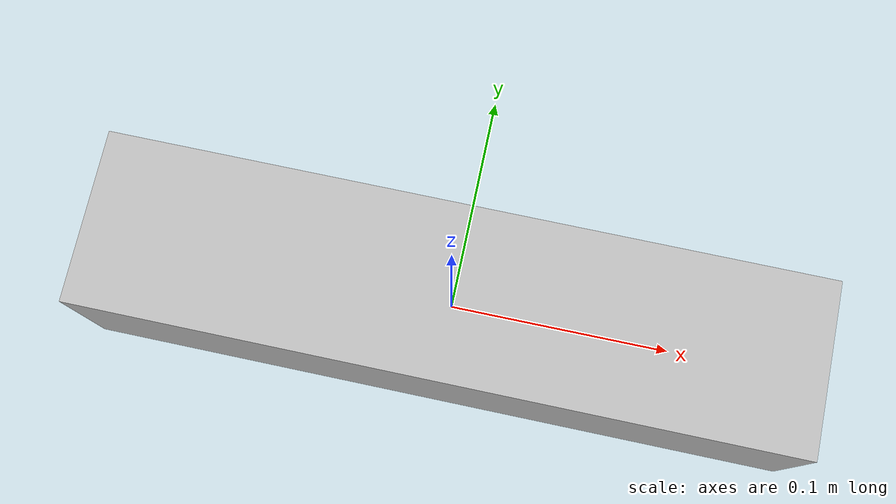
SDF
<?xml version='1.0'?>
<sdf version='1.6'>
  <model name='barricade'>
  <static>true</static>
    <link name='link'>
      <inertial>
        <mass>0.245303</mass>
        <inertia>
          <ixx>0.000221867</ixx>
          <ixy>0</ixy>
          <ixz>0</ixz>
          <iyy>0.00228889</iyy>
          <iyz>0</iyz>
          <izz>0.00232105</izz>
        </inertia>
        <pose>0 0 0 0 -0 0</pose>
      </inertial>
      <self_collide>0</self_collide>
      <enable_wind>0</enable_wind>
      <kinematic>0</kinematic>
      <pose>0 0 0 0 -0 0</pose>
      <visual name='visual'>
        <geometry>
          <box>
            <size>0.327613 0.078825 0.068118</size>
          </box>
        </geometry>
        <material>
          <lighting>1</lighting>
          <script>
            <uri>model://barricade/materials/scripts</uri>
            <uri>model://barricade/materials/textures</uri>
            <name>barricade/Diffuse</name>
          </script>
          <shader type='pixel'/>
          <emissive>0 0 0 1</emissive>
        </material>
        <pose>0 0 0 0 -0 0</pose>
        <transparency>0</transparency>
        <cast_shadows>1</cast_shadows>
      </visual>
      <collision name='collision'>
        <laser_retro>0</laser_retro>
        <max_contacts>10</max_contacts>
        <pose>0 0 0 0 -0 0</pose>
        <geometry>
          <box>
            <size>0.327613 0.078825 0.068118</size>
          </box>
        </geometry>
        <surface>
          <friction>
            <ode>
              <mu>1</mu>
              <mu2>1</mu2>
              <fdir1>0 0 0</fdir1>
              <slip1>0</slip1>
              <slip2>0</slip2>
            </ode>
            <torsional>
              <coefficient>1</coefficient>
              <patch_radius>0</patch_radius>
              <surface_radius>0</surface_radius>
              <use_patch_radius>1</use_patch_radius>
              <ode>
                <slip>0</slip>
              </ode>
            </torsional>
          </friction>
          <bounce>
            <restitution_coefficient>0</restitution_coefficient>
            <threshold>1e+06</threshold>
          </bounce>
          <contact>
            <collide_without_contact>0</collide_without_contact>
            <collide_without_contact_bitmask>1</collide_without_contact_bitmask>
            <collide_bitmask>1</collide_bitmask>
            <ode>
              <soft_cfm>0</soft_cfm>
              <soft_erp>0.2</soft_erp>
              <kp>1e+13</kp>
              <kd>1</kd>
              <max_vel>0.01</max_vel>
              <min_depth>0</min_depth>
            </ode>
            <bullet>
              <split_impulse>1</split_impulse>
              <split_impulse_penetration_threshold>-0.01</split_impulse_penetration_threshold>
              <soft_cfm>0</soft_cfm>
              <soft_erp>0.2</soft_erp>
              <kp>1e+13</kp>
              <kd>1</kd>
            </bullet>
          </contact>
        </surface>
      </collision>
    </link>
    <static>1</static>
    <allow_auto_disable>1</allow_auto_disable>
  </model>
</sdf>
